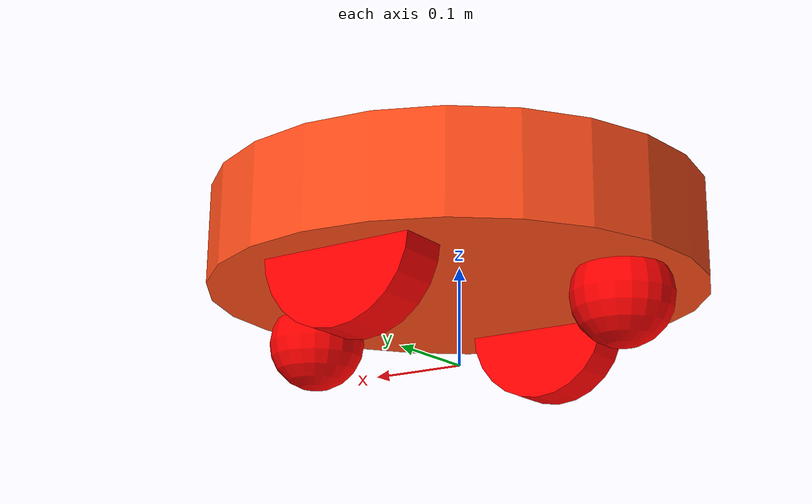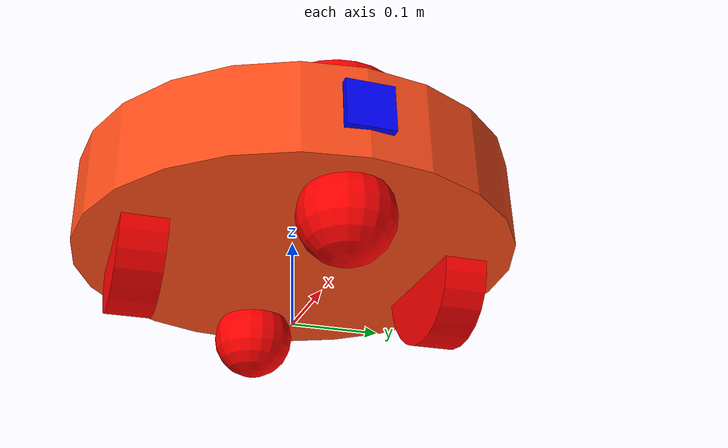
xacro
<?xml version="1.0"?>
<robot xmlns:xacro="http://www.ros.org/wiki/xacro" name="round_bot">

  <xacro:include filename="$(find round_bot)/description/inertial_xacros.xacro"/>

  <link name="base_footprint"/>

  <joint name="chassis_joint" type="fixed">
    <parent link="base_footprint"/>
    <child link="chassis"/>
    <origin xyz="0.0 0.0 0.0" rpy="0.0 0.0 0.0"/>
  </joint>

  <link name="chassis">
    <visual>
      <origin xyz="0.0 0.0 0.12" rpy="0.0 0.0 0.0"/>
      <geometry>
        <cylinder radius="${chassis_radius}" length="${chassis_length}"/>
      </geometry>
      <material name ="Orange">
        <color rgba = "1.0 0.3 0.1 1.0"/>
      </material>
    </visual>
    <collision>
      <origin xyz="0.0 0.0 0.12" rpy="0.0 0.0 0.0"/>
      <geometry>
        <cylinder radius="${chassis_radius}" length="${chassis_length}"/>
      </geometry>
      <contact_coefficients mu1 = "1" mu2 = "1" kp = "1e+13.0" kd = "1.0"/>
    </collision>
    <xacro:inertial_chassis_cylinder chassis_mass="${chassis_mass}" chassis_length="${chassis_length}" chassis_radius="${chassis_radius}">
      <origin xyz="0 0 0.12" rpy="0 0 0"/>
    </xacro:inertial_chassis_cylinder>
  </link>

  <gazebo reference = "chassis">
    <material>Gazebo/Orange</material>
  </gazebo>

  <joint name="left_wheel_joint" type="continuous">
    <parent link="chassis"/>
    <child link="left_wheel"/>
    <axis xyz="0 0 1.0"/>
    <origin xyz="0.0 0.18 0.075" rpy="-1.57 0.0 0.0"/>
  </joint>

  <link name="left_wheel">
    <visual>
      <geometry>
        <cylinder radius="${wheel_radius}" length="${wheel_length}"/>
      </geometry>
      <material name = "Red">
        <color rgba = "1.0 0.0 0.0 1.0"/>
      </material>
    </visual>
    <collision>
      <geometry>
        <cylinder radius="${wheel_radius}" length="${wheel_length}"/>
      </geometry>
      <contact_coefficients mu1="1.0" mu2="1.0" kp="1000.0" kd="1.0"/>
      <surface>
        <friction>
          <bullet>
            <mu>1</mu>
            <mu2>1</mu2>
            <slip1>0.035</slip1>
            <slip2>0</slip2>
            <fdir1>0 0 1</fdir1>
          </bullet>
        </friction>
        <contact>
          <bullet>
            <soft_cfm>0</soft_cfm>
            <soft_erp>0.2</soft_erp>
            <kp>1e+5</kp>
            <kd>1</kd>
            <max_vel>1.0</max_vel>
            <min_depth>0.001</min_depth>
          </bullet>
        </contact>
      </surface>
    </collision>
    <xacro:inertial_wheel_cylinder wheel_mass="${wheel_mass}" wheel_length="${wheel_length}" wheel_radius="${wheel_radius}">
      <origin xyz="0 0 0" rpy="0 0 0"/>
    </xacro:inertial_wheel_cylinder>
  </link>

  <gazebo reference = "left_wheel">
    <material>Gazebo/Red</material>
  </gazebo>

  <joint name="right_wheel_joint" type="continuous">
    <parent link="chassis"/>
    <child link="right_wheel"/>
    <axis xyz="0.0 0.0 1.0"/>
    <origin xyz="0.0 -0.18 0.075" rpy="-1.57 0.0 0.0"/>
  </joint>

  <link name="right_wheel">
    <visual>
      <geometry>
        <cylinder radius="${wheel_radius}" length="${wheel_length}"/>
      </geometry>
      <material name = "Red">
        <color rgba = "1.0 0.0 0.0 1.0"/>
      </material>
    </visual>
    <collision>
      <geometry>
        <cylinder radius="${wheel_radius}" length="${wheel_length}"/>
      </geometry>
      <contact_coefficients mu1="1.0" mu2="1.0" kp="1000.0" kd="1.0"/>
      <surface>
        <friction>
          <bullet>
            <mu>1</mu>
            <mu2>1</mu2>
            <slip1>0.035</slip1>
            <slip2>0</slip2>
            <fdir1>0 0 1</fdir1>
          </bullet>
        </friction>
        <contact>
          <bullet>
            <soft_cfm>0</soft_cfm>
            <soft_erp>0.2</soft_erp>
            <kp>1e+5</kp>
            <kd>1</kd>
            <max_vel>1.0</max_vel>
            <min_depth>0.001</min_depth>
          </bullet>
        </contact>
      </surface>
    </collision>
    <xacro:inertial_wheel_cylinder wheel_mass="${wheel_mass}" wheel_length="${wheel_length}" wheel_radius="${wheel_radius}">
      <origin xyz="0 0 0" rpy="0 0 0"/>
    </xacro:inertial_wheel_cylinder>
  </link>

  <gazebo reference = "right_wheel">
    <material>Gazebo/Red</material>
  </gazebo>

  <joint name="front_caster_joint" type="fixed">
    <parent link="chassis"/>
    <child link="front_caster_link"/>
    <origin xyz="0.18 0.0 0.0452" rpy="0 0 0"/>
    <mu1 value="0.001"/>
    <mu2 value="0.001"/>
  </joint>

  <link name="front_caster_link">
    <visual>
      <geometry>
        <sphere radius="${caster_radius}"/>
      </geometry>
      <material name="Red">
        <color rgba="1.0 0.0 0.0 1.0"/>
      </material>
    </visual>
    <collision>
      <geometry>
        <sphere radius="${caster_radius}"/>
      </geometry>
      <contact_coefficients mu="0.1" kp="1000.0" kd="1.0"/>
      <surface>
        <contact>
          <bullet>
            <soft_cfm>0</soft_cfm>
            <soft_erp>0.2</soft_erp>
            <kp>1e+5</kp>
            <kd>1</kd>
            <max_vel>0.01</max_vel>
            <min_depth>0.001</min_depth>
          </bullet>
        </contact>
      </surface>
    </collision>
    <xacro:inertial_sphere caster_mass="${caster_mass}" caster_radius="${caster_radius}">
      <origin xyz="0 0 0" rpy="0 0 0"/>
    </xacro:inertial_sphere>
  </link>

  <gazebo reference = "front_caster_link">
    <material>Gazebo/Red</material>
  </gazebo>

  <joint name="back_caster_joint" type="fixed">
    <parent link="chassis"/>
    <child link="back_caster_link"/>
    <origin xyz="-0.18 0.0 0.0452" rpy="0 0 0"/>
    <mu1 value="0.001"/>
    <mu2 value="0.001"/>
  </joint>

  <link name="back_caster_link">
    <visual>
      <geometry>
        <sphere radius="${caster_radius}"/>
      </geometry>
      <material name="Red">
        <color rgba="1.0 0.0 0.0 1.0"/>
      </material>
    </visual>
    <collision>
      <geometry>
        <sphere radius="${caster_radius}"/>
      </geometry>
      <contact_coefficients mu="0.1" kp="1000.0" kd="1.0"/>
      <surface>
        <contact>
          <bullet>
            <soft_cfm>0</soft_cfm>
            <soft_erp>0.2</soft_erp>
            <kp>1e+5</kp>
            <kd>1</kd>
            <max_vel>0.01</max_vel>
            <min_depth>0.001</min_depth>
          </bullet>
        </contact>
      </surface>
    </collision>
    <xacro:inertial_sphere caster_mass="${caster_mass}" caster_radius="${caster_radius}">
      <origin xyz="0 0 0" rpy="0 0 0"/>
    </xacro:inertial_sphere>
  </link>

  <gazebo reference = "back_caster_link">
    <material>Gazebo/Red</material>
  </gazebo>

  <joint name="gps_joint" type="fixed">
    <origin xyz="0.0 0.0 0.17" rpy="0 0 0"/>
    <parent link="chassis"/>
    <child link = "gps_link"/>
  </joint>

  <link name="gps_link">
    <visual>
      <geometry>
        <box size="0.03 0.03 0.01"/>
      </geometry>
      <material name="blue">
        <color rgba="0 0 1 1"/>
      </material>
    </visual>
  </link>

  <gazebo reference = "gps_link">
    <material>Gazebo/Blue</material>
    <sensor name="navsat" type="navsat">
      <always_on>true</always_on>
      <update_rate>50</update_rate>
      <topic>/navsat/fix</topic>
      <gz_frame_id>gps_link</gz_frame_id>
      <navsat>
        <position_sensing>
          <horizontal>
            <noise type="gaussian">
              <mean>0.0</mean>
              <stddev>0.0</stddev>
            </noise>
          </horizontal>
          <vertical>
            <noise type="gaussian">
              <mean>0.0</mean>
              <stddev>0.0</stddev>
            </noise>
          </vertical>
        </position_sensing>
      </navsat>
    </sensor>
  </gazebo>

  <link name="imu_link">
    <visual>
      <origin xyz="0 0 0.0" rpy="0 0 0"/>
      <geometry>
        <box size="0.03 0.03 0.02"/>
      </geometry>
      <material name="green">
        <color rgba="0 1 0 1"/>
      </material>
    </visual>
  </link>

  <joint name="imu_joint" type="fixed">
    <parent link="chassis"/>
    <child link="imu_link"/>
    <origin xyz="0.0 0.0 0.165" rpy="0.0 0.0 0.0"/>
  </joint>

  <gazebo reference="imu_link">
    <material>Gazebo/Green</material>
    <sensor name="imu_sensor" type="imu">
      <always_on>true</always_on>
      <update_rate>50.0</update_rate>
      <visualize>true</visualize>
      <gz_frame_id>imu_link</gz_frame_id>
      <topic>imu</topic>
      <imu>
      <angular_velocity>
        <x>
          <noise type="gaussian">
            <mean>0.0</mean>
            <stddev>2e-4</stddev>
            <bias_mean>0.0000075</bias_mean>
            <bias_stddev>0.0000008</bias_stddev>
          </noise>
        </x>
        <y>
          <noise type="gaussian">
            <mean>0.0</mean>
            <stddev>2e-4</stddev>
            <bias_mean>0.0000075</bias_mean>
            <bias_stddev>0.0000008</bias_stddev>
          </noise>
        </y>
        <z>
          <noise type="gaussian">
            <mean>0.0</mean>
            <stddev>2e-4</stddev>
            <bias_mean>0.0000075</bias_mean>
            <bias_stddev>0.0000008</bias_stddev>
          </noise>
        </z>
      </angular_velocity>
      <linear_acceleration>
        <x>
          <noise type="gaussian">
            <mean>0.0</mean>
            <stddev>1.7e-2</stddev>
            <bias_mean>0.1</bias_mean>
            <bias_stddev>0.001</bias_stddev>
          </noise>
        </x>
        <y>
          <noise type="gaussian">
            <mean>0.0</mean>
            <stddev>1.7e-2</stddev>
            <bias_mean>0.1</bias_mean>
            <bias_stddev>0.001</bias_stddev>
          </noise>
        </y>
        <z>
          <noise type="gaussian">
            <mean>0.0</mean>
            <stddev>1.7e-2</stddev>
            <bias_mean>0.1</bias_mean>
            <bias_stddev>0.001</bias_stddev>
          </noise>
        </z>
      </linear_acceleration>
    </imu>
    </sensor>
  </gazebo>

  <link name="camera_link">
    <visual>
      <geometry>
        <box size="0.010 0.05 0.05"/>
      </geometry>
      <material name="blue">
        <color rgba="0 0 1 1"/>
      </material>
    </visual>
  </link>

  <joint name="camera_joint" type="fixed">
    <origin xyz="0.25 0.0 0.125" rpy="0 0 0"/>
    <parent link="chassis"/>
    <child link="camera_link"/>
  </joint>

  <joint name="camera_optical_joint" type="fixed">
    <origin xyz="0.0 0.0 0.0" rpy="-1.57 0.0 -1.57"/>
    <parent link="camera_link"/>
    <child link="camera_link_optical"/>
  </joint>

  <link name="camera_link_optical"/>

  <!-- camera -->
  <gazebo reference="camera_link">
    <material> Gazebo/Blue</material>
    <sensor type="camera" name="camera">
      <update_rate>50.0</update_rate>
      <camera name="head">
        <camera_info_topic>camera/camera_info</camera_info_topic>
          <horizontal_fov>1.3962634</horizontal_fov>
          <image>
            <width>640</width>
            <height>480</height>
            <format>R8G8B8</format>
          </image>
          <clip>
            <near>0.05</near>
            <far>8.0</far>
          </clip>
      </camera>
      <topic>camera/image_raw</topic>
      <gz_frame_id>camera_link_optical</gz_frame_id>
    </sensor>
  </gazebo>

  <link name="lidar_link">
    <visual>
      <geometry>
        <cylinder radius="${lidar_radius}" length="${lidar_length}"/>
      </geometry>
      <material name="red">
        <color rgba="1 0 0 1"/>
      </material>
    </visual>

    <collision>
      <geometry>
        <cylinder radius="${lidar_radius}" length="${lidar_length}"/>
      </geometry>
    </collision>
    <xacro:inertial_lidar_cylinder lidar_mass="0.1" lidar_length="0.07" lidar_radius="0.1">
      <origin xyz="0 0 0" rpy="0 0 0"/>
    </xacro:inertial_lidar_cylinder>
  </link>

  <joint name="lidar_joint" type="fixed">
    <origin xyz="0.15 0.0 0.18" rpy="0.0 0.0 0.0"/>
    <parent link="chassis"/>
    <child link="lidar_link"/>
  </joint>

  <!-- 2d lidar  -->
  <gazebo reference="lidar_link">
    <material>Gazebo/Red</material>
    <sensor name="hls_lfcd_lds" type="gpu_lidar">
      <pose> 0 0 0 0 0 0 </pose>
      <always_on>true</always_on>
      <update_rate>50.0</update_rate>
      <lidar>
        <scan>
          <horizontal>
            <samples>360</samples>
            <resolution>1.000000</resolution>
            <min_angle>-3.14159</min_angle>
            <max_angle>3.14159</max_angle>
          </horizontal>
        </scan>
        <range>
          <min>0.1</min>
          <max>10.0</max>
          <resolution>0.1</resolution>
        </range>
        <noise>
          <type>gaussian</type>
          <mean>0.0</mean>
          <stddev>0.01</stddev>
        </noise>
      </lidar>
      <topic>scan</topic>
      <gz_frame_id>lidar_link</gz_frame_id>
    </sensor>
  </gazebo>

  <!-- 3d lidar -->

  <gazebo>
    <plugin name='gz::sim::systems::DiffDrive' filename='gz-sim-diff-drive-system'>
      <left_joint>left_wheel_joint</left_joint>
      <right_joint>right_wheel_joint</right_joint>
      <wheel_separation>0.36</wheel_separation>
      <wheel_radius>0.08</wheel_radius>
      <max_linear_acceleration>10</max_linear_acceleration>
      <min_linear_acceleration>-10</min_linear_acceleration>
      <max_angular_acceleration>10</max_angular_acceleration>
      <min_angular_acceleration>-10</min_angular_acceleration>
      <max_linear_velocity>1.5</max_linear_velocity>
      <min_linear_velocity>0.0</min_linear_velocity>
      <max_angular_velocity>1.5</max_angular_velocity>
      <min_angular_velocity>-1.5</min_angular_velocity>
      <frame_id>odom</frame_id>
      <child_frame_id>base_footprint</child_frame_id>
      <odom_topic>odom</odom_topic>
      <odom_publisher_frequency>50</odom_publisher_frequency>
      <!-- comment this below one when you are using navigation, because we are letting ros to handle tf-->
      <topic>cmd_vel</topic>
    </plugin>

    <plugin filename="gz-sim-joint-state-publisher-system"
      name="gz::sim::systems::JointStatePublisher">
      <topic>joint_states</topic>
      <joint_name>left_wheel_joint</joint_name>
      <joint_name>right_wheel_joint</joint_name>
      <update_rate>50</update_rate>
    </plugin>
  </gazebo>

</robot>

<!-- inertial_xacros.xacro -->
<robot xmlns:xacro="http://www.ros.org/wiki/xacro" name="round_bot">

	<!-- Specify some standard inertial calculations https://en.wikipedia.org/wiki/List_of_moments_of_inertia -->
	<!-- These make use of xacro's mathematical functionality -->
	<xacro:property name="wheel_radius" value="0.08"/>
	<xacro:property name="wheel_length" value="0.05"/>
	<xacro:property name="wheel_mass" value="0.75"/>
	<xacro:property name="chassis_radius" value="0.25"/>
	<xacro:property name="chassis_length" value="0.1"/>
	<xacro:property name="chassis_mass" value="2"/>
	<xacro:property name="mount_radius" value="0.04"/>
	<xacro:property name="mount_length" value="0.04"/>
	<xacro:property name="mount_mass" value="0.1"/>
	<xacro:property name="lidar_radius" value="0.07"/>
	<xacro:property name="lidar_length" value="0.04"/>
	<xacro:property name="lidar_mass" value="0.1"/>
	<xacro:property name="caster_mass" value="0.75"/>
	<xacro:property name="caster_radius" value="0.05"/>

	<xacro:macro name="inertial_sphere" params="caster_mass caster_radius *origin">
		<inertial>
			<xacro:insert_block name="origin"/>
			<mass value="${caster_mass}" />
			<inertia ixx="${(2/5) * caster_mass * (caster_radius*caster_radius)}" ixy="0.0" ixz="0.0"
							iyy="${(2/5) * caster_mass * (caster_radius*caster_radius)}" iyz="0.0"
							izz="${(2/5) * caster_mass * (caster_radius*caster_radius)}" />
		</inertial>
	</xacro:macro>

	<xacro:macro name="inertial_wheel_cylinder" params="wheel_mass wheel_length wheel_radius *origin">
		<inertial>
			<xacro:insert_block name="origin"/>
			<mass value="${wheel_mass}" />
			<inertia ixx="${(1/12) * wheel_mass * (3*wheel_radius*wheel_radius + wheel_length*wheel_length)}" ixy="0.0" ixz="0.0"
							iyy="${(1/12) * wheel_mass * (3*wheel_radius*wheel_radius + wheel_length*wheel_length)}" iyz="0.0"
							izz="${(1/2) * wheel_mass * (wheel_radius*wheel_radius)}" />
		</inertial>
	</xacro:macro>

	<xacro:macro name="inertial_chassis_cylinder" params="chassis_mass chassis_length chassis_radius *origin">
		<inertial>
			<xacro:insert_block name="origin"/>
			<mass value="${chassis_mass}" />
			<inertia ixx="${(1/12) * chassis_mass * (3*chassis_radius*chassis_radius + chassis_length*chassis_length)}" ixy="0.0" ixz="0.0"
							iyy="${(1/12) * chassis_mass * (3*chassis_radius*chassis_radius + chassis_length*chassis_length)}" iyz="0.0"
							izz="${(1/2) * chassis_mass * (chassis_radius*chassis_radius)}" />
		</inertial>
	</xacro:macro>

	<xacro:macro name="inertial_mount_cylinder" params="mount_mass mount_length mount_radius *origin">
		<inertial>
			<xacro:insert_block name="origin"/>
			<mass value="${mount_mass}" />
			<inertia ixx="${(1/12) * mount_mass * (3*mount_radius*mount_radius + mount_length*mount_length)}" ixy="0.0" ixz="0.0"
							iyy="${(1/12) * mount_mass * (3*mount_radius*mount_radius + mount_length*mount_length)}" iyz="0.0"
							izz="${(1/2) * mount_mass * (mount_radius*mount_radius)}" />
		</inertial>
	</xacro:macro>

	<xacro:macro name="inertial_lidar_cylinder" params="lidar_mass lidar_length lidar_radius *origin">
		<inertial>
			<xacro:insert_block name="origin"/>
			<mass value="${lidar_mass}" />
			<inertia ixx="${(1/12) * lidar_mass * (3*lidar_radius*lidar_radius + lidar_length*lidar_length)}" ixy="0.0" ixz="0.0"
							iyy="${(1/12) * lidar_mass * (3*lidar_radius*lidar_radius + lidar_length*lidar_length)}" iyz="0.0"
							izz="${(1/2) * lidar_radius * (lidar_radius*lidar_radius)}" />
		</inertial>
	</xacro:macro>

</robot>
